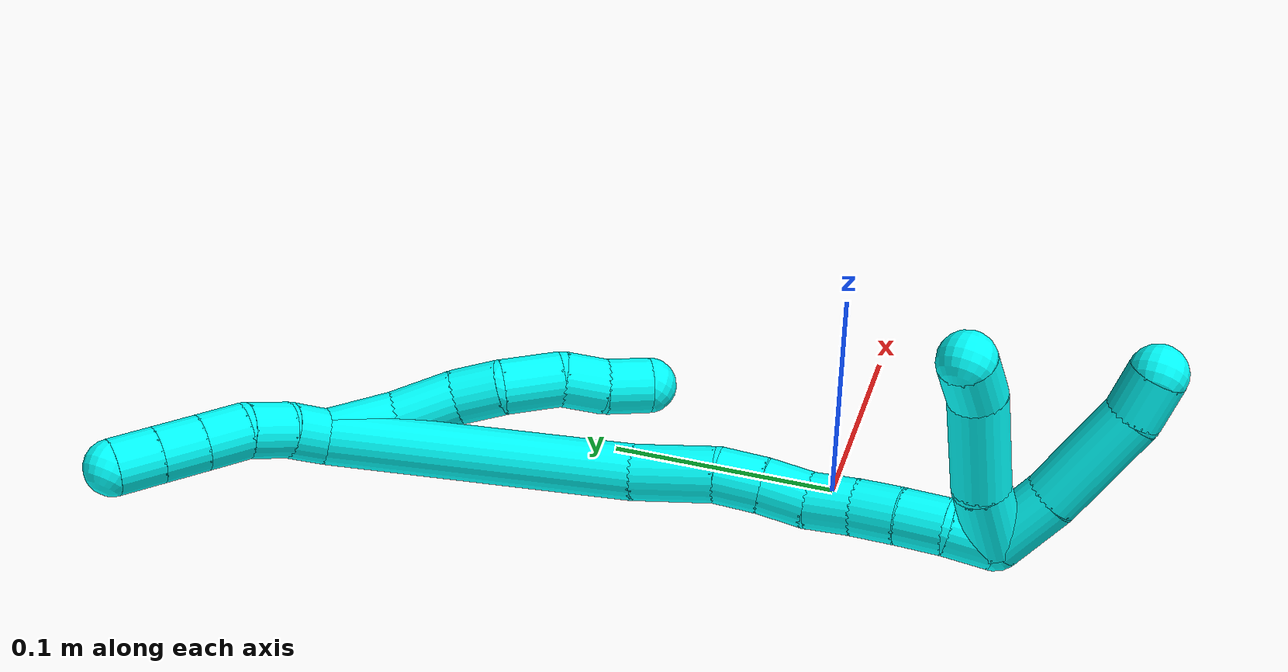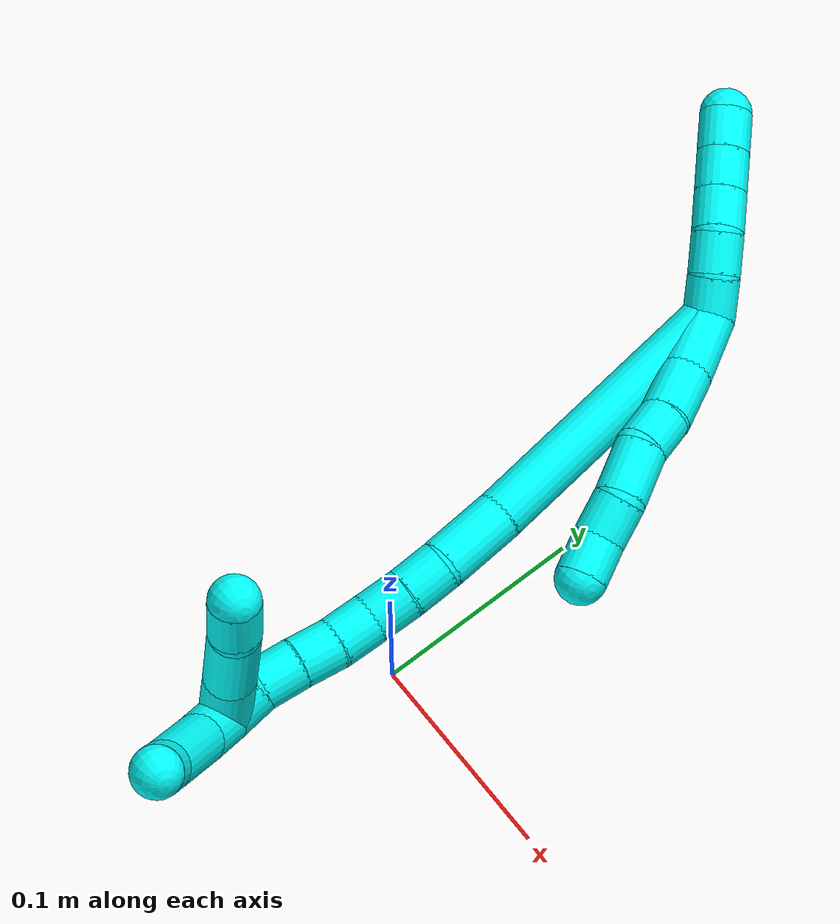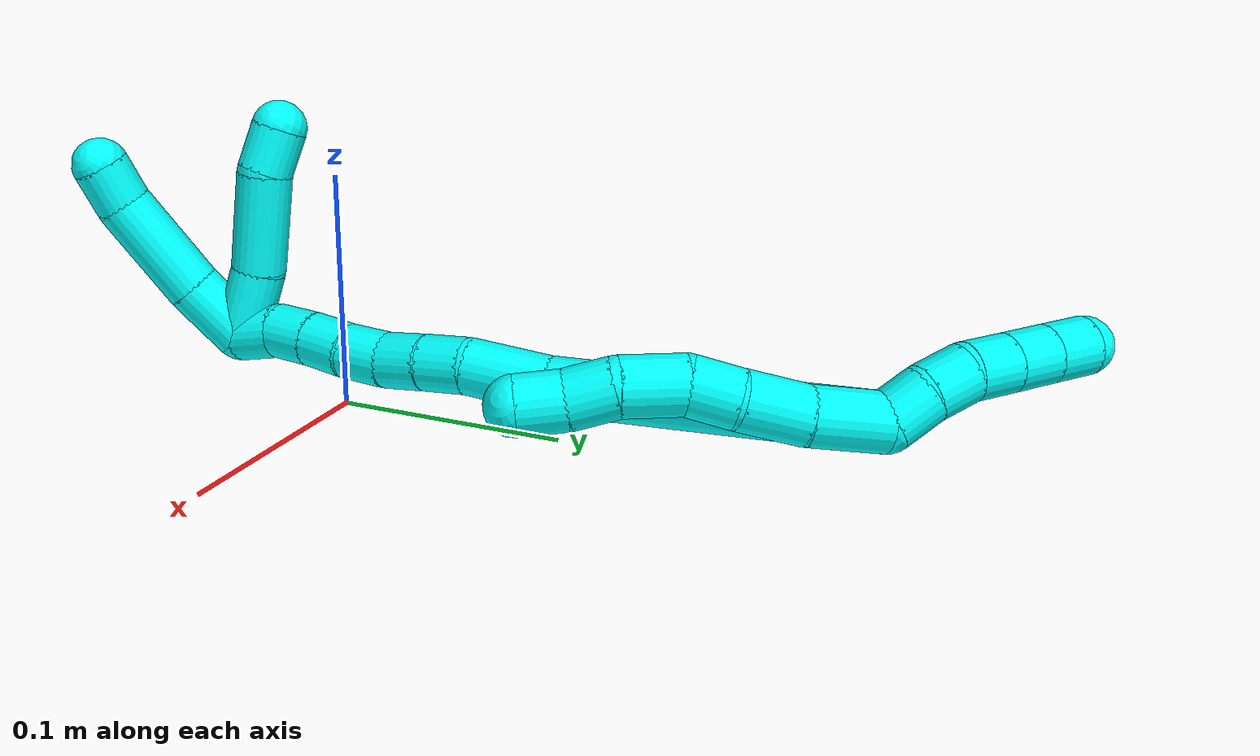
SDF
<sdf version="1.7">
 <world name="default">
  <model name="3">
   <static>0</static>
   <link name="3">
    <collision name="collision-cylinder-e_1_2_8">
     <pose>0.007345 -0.010879 0.009837 0.835688 0.464266 0.209148</pose>
     <geometry><cylinder><radius>0.0125</radius><length>0.032807</length></cylinder></geometry>
     <surface>
      <friction><ode><mu>1.16</mu><mu2>1.16</mu2><slip1>0</slip1><slip2>0</slip2></ode></friction>
      <contact><ode><kp>1e+06</kp><kd>1</kd><max_vel>0</max_vel><min_depth>0.001</min_depth></ode></contact>
     </surface>
    </collision>
    <visual name="visual-cylinder-e_1_2_8">
     <pose>0.007345 -0.010879 0.009837 0.835688 0.464266 0.209148</pose>
     <geometry><cylinder><radius>0.0125</radius><length>0.032807</length></cylinder></geometry>
     <material><ambient>0.003922 1 0.996078 1</ambient></material>
    </visual>
    <collision name="collision-cylinder-e_2_8_9">
     <pose>0.019166 -0.03165 0.028644 0.834187 0.32342 0.144316</pose>
     <geometry><cylinder><radius>0.0125</radius><length>0.028167</length></cylinder></geometry>
     <surface>
      <friction><ode><mu>1.16</mu><mu2>1.16</mu2><slip1>0</slip1><slip2>0</slip2></ode></friction>
      <contact><ode><kp>1e+06</kp><kd>1</kd><max_vel>0</max_vel><min_depth>0.001</min_depth></ode></contact>
     </surface>
    </collision>
    <visual name="visual-cylinder-e_2_8_9">
     <pose>0.019166 -0.03165 0.028644 0.834187 0.32342 0.144316</pose>
     <geometry><cylinder><radius>0.0125</radius><length>0.028167</length></cylinder></geometry>
     <material><ambient>0.003922 1 0.996078 1</ambient></material>
    </visual>
    <collision name="collision-cylinder-e_3_9_10">
     <pose>0.02657 -0.050114 0.04282 1.02506 0.284071 0.16058</pose>
     <geometry><cylinder><radius>0.0125</radius><length>0.020896</length></cylinder></geometry>
     <surface>
      <friction><ode><mu>1.16</mu><mu2>1.16</mu2><slip1>0</slip1><slip2>0</slip2></ode></friction>
      <contact><ode><kp>1e+06</kp><kd>1</kd><max_vel>0</max_vel><min_depth>0.001</min_depth></ode></contact>
     </surface>
    </collision>
    <visual name="visual-cylinder-e_3_9_10">
     <pose>0.02657 -0.050114 0.04282 1.02506 0.284071 0.16058</pose>
     <geometry><cylinder><radius>0.0125</radius><length>0.020896</length></cylinder></geometry>
     <material><ambient>0.003922 1 0.996078 1</ambient></material>
    </visual>
    <collision name="collision-cylinder-e_4_10_11">
     <pose>0.037071 -0.06755 0.055173 0.892206 0.586913 0.287053</pose>
     <geometry><cylinder><radius>0.0125</radius><length>0.027349</length></cylinder></geometry>
     <surface>
      <friction><ode><mu>1.16</mu><mu2>1.16</mu2><slip1>0</slip1><slip2>0</slip2></ode></friction>
      <contact><ode><kp>1e+06</kp><kd>1</kd><max_vel>0</max_vel><min_depth>0.001</min_depth></ode></contact>
     </surface>
    </collision>
    <visual name="visual-cylinder-e_4_10_11">
     <pose>0.037071 -0.06755 0.055173 0.892206 0.586913 0.287053</pose>
     <geometry><cylinder><radius>0.0125</radius><length>0.027349</length></cylinder></geometry>
     <material><ambient>0.003922 1 0.996078 1</ambient></material>
    </visual>
    <collision name="collision-cylinder-e_5_11_12">
     <pose>0.052051 -0.082958 0.064955 1.18792 0.809744 0.563412</pose>
     <geometry><cylinder><radius>0.0125</radius><length>0.020459</length></cylinder></geometry>
     <surface>
      <friction><ode><mu>1.16</mu><mu2>1.16</mu2><slip1>0</slip1><slip2>0</slip2></ode></friction>
      <contact><ode><kp>1e+06</kp><kd>1</kd><max_vel>0</max_vel><min_depth>0.001</min_depth></ode></contact>
     </surface>
    </collision>
    <visual name="visual-cylinder-e_5_11_12">
     <pose>0.052051 -0.082958 0.064955 1.18792 0.809744 0.563412</pose>
     <geometry><cylinder><radius>0.0125</radius><length>0.020459</length></cylinder></geometry>
     <material><ambient>0.003922 1 0.996078 1</ambient></material>
    </visual>
    <collision name="collision-cylinder-e_6_12_6">
     <pose>0.065743 -0.096125 0.072051 0.978153 0.666867 0.364581</pose>
     <geometry><cylinder><radius>0.0125</radius><length>0.020323</length></cylinder></geometry>
     <surface>
      <friction><ode><mu>1.16</mu><mu2>1.16</mu2><slip1>0</slip1><slip2>0</slip2></ode></friction>
      <contact><ode><kp>1e+06</kp><kd>1</kd><max_vel>0</max_vel><min_depth>0.001</min_depth></ode></contact>
     </surface>
    </collision>
    <visual name="visual-cylinder-e_6_12_6">
     <pose>0.065743 -0.096125 0.072051 0.978153 0.666867 0.364581</pose>
     <geometry><cylinder><radius>0.0125</radius><length>0.020323</length></cylinder></geometry>
     <material><ambient>0.003922 1 0.996078 1</ambient></material>
    </visual>
    <collision name="collision-cylinder-e_1_2_13">
     <pose>-0.009143 0.002691 -0.003027 -2.41487 -1.15379 2.08396</pose>
     <geometry><cylinder><radius>0.0125</radius><length>0.02</length></cylinder></geometry>
     <surface>
      <friction><ode><mu>1.16</mu><mu2>1.16</mu2><slip1>0</slip1><slip2>0</slip2></ode></friction>
      <contact><ode><kp>1e+06</kp><kd>1</kd><max_vel>0</max_vel><min_depth>0.001</min_depth></ode></contact>
     </surface>
    </collision>
    <visual name="visual-cylinder-e_1_2_13">
     <pose>-0.009143 0.002691 -0.003027 -2.41487 -1.15379 2.08396</pose>
     <geometry><cylinder><radius>0.0125</radius><length>0.02</length></cylinder></geometry>
     <material><ambient>0.003922 1 0.996078 1</ambient></material>
    </visual>
    <collision name="collision-cylinder-e_2_13_14">
     <pose>-0.026546 0.008587 -0.010691 -2.53674 -0.971977 2.0746</pose>
     <geometry><cylinder><radius>0.0125</radius><length>0.02</length></cylinder></geometry>
     <surface>
      <friction><ode><mu>1.16</mu><mu2>1.16</mu2><slip1>0</slip1><slip2>0</slip2></ode></friction>
      <contact><ode><kp>1e+06</kp><kd>1</kd><max_vel>0</max_vel><min_depth>0.001</min_depth></ode></contact>
     </surface>
    </collision>
    <visual name="visual-cylinder-e_2_13_14">
     <pose>-0.026546 0.008587 -0.010691 -2.53674 -0.971977 2.0746</pose>
     <geometry><cylinder><radius>0.0125</radius><length>0.02</length></cylinder></geometry>
     <material><ambient>0.003922 1 0.996078 1</ambient></material>
    </visual>
    <collision name="collision-cylinder-e_3_14_15">
     <pose>-0.041201 0.015745 -0.021921 -2.60166 -0.693837 1.83502</pose>
     <geometry><cylinder><radius>0.0125</radius><length>0.02</length></cylinder></geometry>
     <surface>
      <friction><ode><mu>1.16</mu><mu2>1.16</mu2><slip1>0</slip1><slip2>0</slip2></ode></friction>
      <contact><ode><kp>1e+06</kp><kd>1</kd><max_vel>0</max_vel><min_depth>0.001</min_depth></ode></contact>
     </surface>
    </collision>
    <visual name="visual-cylinder-e_3_14_15">
     <pose>-0.041201 0.015745 -0.021921 -2.60166 -0.693837 1.83502</pose>
     <geometry><cylinder><radius>0.0125</radius><length>0.02</length></cylinder></geometry>
     <material><ambient>0.003922 1 0.996078 1</ambient></material>
    </visual>
    <collision name="collision-cylinder-e_4_15_16">
     <pose>-0.054037 0.023615 -0.035086 -2.60383 -0.69985 1.84814</pose>
     <geometry><cylinder><radius>0.0125</radius><length>0.02</length></cylinder></geometry>
     <surface>
      <friction><ode><mu>1.16</mu><mu2>1.16</mu2><slip1>0</slip1><slip2>0</slip2></ode></friction>
      <contact><ode><kp>1e+06</kp><kd>1</kd><max_vel>0</max_vel><min_depth>0.001</min_depth></ode></contact>
     </surface>
    </collision>
    <visual name="visual-cylinder-e_4_15_16">
     <pose>-0.054037 0.023615 -0.035086 -2.60383 -0.69985 1.84814</pose>
     <geometry><cylinder><radius>0.0125</radius><length>0.02</length></cylinder></geometry>
     <material><ambient>0.003922 1 0.996078 1</ambient></material>
    </visual>
    <collision name="collision-cylinder-e_5_16_5">
     <pose>-0.066903 0.031474 -0.048228 -2.60144 -0.697693 1.84042</pose>
     <geometry><cylinder><radius>0.0125</radius><length>0.02</length></cylinder></geometry>
     <surface>
      <friction><ode><mu>1.16</mu><mu2>1.16</mu2><slip1>0</slip1><slip2>0</slip2></ode></friction>
      <contact><ode><kp>1e+06</kp><kd>1</kd><max_vel>0</max_vel><min_depth>0.001</min_depth></ode></contact>
     </surface>
    </collision>
    <visual name="visual-cylinder-e_5_16_5">
     <pose>-0.066903 0.031474 -0.048228 -2.60144 -0.697693 1.84042</pose>
     <geometry><cylinder><radius>0.0125</radius><length>0.02</length></cylinder></geometry>
     <material><ambient>0.003922 1 0.996078 1</ambient></material>
    </visual>
    <collision name="collision-cylinder-e_1_2_17">
     <pose>0.029626 -0.061307 0.015104 1.32924 0.438707 0.345873</pose>
     <geometry><cylinder><radius>0.0125</radius><length>0.13949</length></cylinder></geometry>
     <surface>
      <friction><ode><mu>1.16</mu><mu2>1.16</mu2><slip1>0</slip1><slip2>0</slip2></ode></friction>
      <contact><ode><kp>1e+06</kp><kd>1</kd><max_vel>0</max_vel><min_depth>0.001</min_depth></ode></contact>
     </surface>
    </collision>
    <visual name="visual-cylinder-e_1_2_17">
     <pose>0.029626 -0.061307 0.015104 1.32924 0.438707 0.345873</pose>
     <geometry><cylinder><radius>0.0125</radius><length>0.13949</length></cylinder></geometry>
     <material><ambient>0.003922 1 0.996078 1</ambient></material>
    </visual>
    <collision name="collision-cylinder-e_2_17_18">
     <pose>0.065256 -0.139528 0.035214 1.2831 0.328103 0.246053</pose>
     <geometry><cylinder><radius>0.0125</radius><length>0.037267</length></cylinder></geometry>
     <surface>
      <friction><ode><mu>1.16</mu><mu2>1.16</mu2><slip1>0</slip1><slip2>0</slip2></ode></friction>
      <contact><ode><kp>1e+06</kp><kd>1</kd><max_vel>0</max_vel><min_depth>0.001</min_depth></ode></contact>
     </surface>
    </collision>
    <visual name="visual-cylinder-e_2_17_18">
     <pose>0.065256 -0.139528 0.035214 1.2831 0.328103 0.246053</pose>
     <geometry><cylinder><radius>0.0125</radius><length>0.037267</length></cylinder></geometry>
     <material><ambient>0.003922 1 0.996078 1</ambient></material>
    </visual>
    <collision name="collision-cylinder-e_3_18_19">
     <pose>0.075712 -0.16576 0.041218 1.46391 0.443532 0.399743</pose>
     <geometry><cylinder><radius>0.0125</radius><length>0.020749</length></cylinder></geometry>
     <surface>
      <friction><ode><mu>1.16</mu><mu2>1.16</mu2><slip1>0</slip1><slip2>0</slip2></ode></friction>
      <contact><ode><kp>1e+06</kp><kd>1</kd><max_vel>0</max_vel><min_depth>0.001</min_depth></ode></contact>
     </surface>
    </collision>
    <visual name="visual-cylinder-e_3_18_19">
     <pose>0.075712 -0.16576 0.041218 1.46391 0.443532 0.399743</pose>
     <geometry><cylinder><radius>0.0125</radius><length>0.020749</length></cylinder></geometry>
     <material><ambient>0.003922 1 0.996078 1</ambient></material>
    </visual>
    <collision name="collision-cylinder-e_4_19_20">
     <pose>0.084543 -0.184306 0.042359 1.55553 0.442956 0.436458</pose>
     <geometry><cylinder><radius>0.0125</radius><length>0.020433</length></cylinder></geometry>
     <surface>
      <friction><ode><mu>1.16</mu><mu2>1.16</mu2><slip1>0</slip1><slip2>0</slip2></ode></friction>
      <contact><ode><kp>1e+06</kp><kd>1</kd><max_vel>0</max_vel><min_depth>0.001</min_depth></ode></contact>
     </surface>
    </collision>
    <visual name="visual-cylinder-e_4_19_20">
     <pose>0.084543 -0.184306 0.042359 1.55553 0.442956 0.436458</pose>
     <geometry><cylinder><radius>0.0125</radius><length>0.020433</length></cylinder></geometry>
     <material><ambient>0.003922 1 0.996078 1</ambient></material>
    </visual>
    <collision name="collision-cylinder-e_5_20_21">
     <pose>0.092129 -0.203124 0.043978 1.41782 0.319299 0.274456</pose>
     <geometry><cylinder><radius>0.0125</radius><length>0.020438</length></cylinder></geometry>
     <surface>
      <friction><ode><mu>1.16</mu><mu2>1.16</mu2><slip1>0</slip1><slip2>0</slip2></ode></friction>
      <contact><ode><kp>1e+06</kp><kd>1</kd><max_vel>0</max_vel><min_depth>0.001</min_depth></ode></contact>
     </surface>
    </collision>
    <visual name="visual-cylinder-e_5_20_21">
     <pose>0.092129 -0.203124 0.043978 1.41782 0.319299 0.274456</pose>
     <geometry><cylinder><radius>0.0125</radius><length>0.020438</length></cylinder></geometry>
     <material><ambient>0.003922 1 0.996078 1</ambient></material>
    </visual>
    <collision name="collision-cylinder-e_6_21_22">
     <pose>0.097669 -0.222504 0.046106 1.50461 0.233338 0.218507</pose>
     <geometry><cylinder><radius>0.0125</radius><length>0.020171</length></cylinder></geometry>
     <surface>
      <friction><ode><mu>1.16</mu><mu2>1.16</mu2><slip1>0</slip1><slip2>0</slip2></ode></friction>
      <contact><ode><kp>1e+06</kp><kd>1</kd><max_vel>0</max_vel><min_depth>0.001</min_depth></ode></contact>
     </surface>
    </collision>
    <visual name="visual-cylinder-e_6_21_22">
     <pose>0.097669 -0.222504 0.046106 1.50461 0.233338 0.218507</pose>
     <geometry><cylinder><radius>0.0125</radius><length>0.020171</length></cylinder></geometry>
     <material><ambient>0.003922 1 0.996078 1</ambient></material>
    </visual>
    <collision name="collision-cylinder-e_7_22_23">
     <pose>0.10304 -0.24222 0.047372 1.50871 0.296616 0.278986</pose>
     <geometry><cylinder><radius>0.0125</radius><length>0.020795</length></cylinder></geometry>
     <surface>
      <friction><ode><mu>1.16</mu><mu2>1.16</mu2><slip1>0</slip1><slip2>0</slip2></ode></friction>
      <contact><ode><kp>1e+06</kp><kd>1</kd><max_vel>0</max_vel><min_depth>0.001</min_depth></ode></contact>
     </surface>
    </collision>
    <visual name="visual-cylinder-e_7_22_23">
     <pose>0.10304 -0.24222 0.047372 1.50871 0.296616 0.278986</pose>
     <geometry><cylinder><radius>0.0125</radius><length>0.020795</length></cylinder></geometry>
     <material><ambient>0.003922 1 0.996078 1</ambient></material>
    </visual>
    <collision name="collision-cylinder-e_8_23_1">
     <pose>0.111674 -0.260794 0.048734 1.4848 0.572373 0.5274</pose>
     <geometry><cylinder><radius>0.0125</radius><length>0.020658</length></cylinder></geometry>
     <surface>
      <friction><ode><mu>1.16</mu><mu2>1.16</mu2><slip1>0</slip1><slip2>0</slip2></ode></friction>
      <contact><ode><kp>1e+06</kp><kd>1</kd><max_vel>0</max_vel><min_depth>0.001</min_depth></ode></contact>
     </surface>
    </collision>
    <visual name="visual-cylinder-e_8_23_1">
     <pose>0.111674 -0.260794 0.048734 1.4848 0.572373 0.5274</pose>
     <geometry><cylinder><radius>0.0125</radius><length>0.020658</length></cylinder></geometry>
     <material><ambient>0.003922 1 0.996078 1</ambient></material>
    </visual>
    <collision name="collision-cylinder-e_1_1_24">
     <pose>0.113838 -0.280111 0.059957 0.794381 -0.225535 -0.09494</pose>
     <geometry><cylinder><radius>0.0125</radius><length>0.030678</length></cylinder></geometry>
     <surface>
      <friction><ode><mu>1.16</mu><mu2>1.16</mu2><slip1>0</slip1><slip2>0</slip2></ode></friction>
      <contact><ode><kp>1e+06</kp><kd>1</kd><max_vel>0</max_vel><min_depth>0.001</min_depth></ode></contact>
     </surface>
    </collision>
    <visual name="visual-cylinder-e_1_1_24">
     <pose>0.113838 -0.280111 0.059957 0.794381 -0.225535 -0.09494</pose>
     <geometry><cylinder><radius>0.0125</radius><length>0.030678</length></cylinder></geometry>
     <material><ambient>0.003922 1 0.996078 1</ambient></material>
    </visual>
    <collision name="collision-cylinder-e_2_24_25">
     <pose>0.102425 -0.30597 0.087776 0.71939 -0.333304 -0.126346</pose>
     <geometry><cylinder><radius>0.0125</radius><length>0.048797</length></cylinder></geometry>
     <surface>
      <friction><ode><mu>1.16</mu><mu2>1.16</mu2><slip1>0</slip1><slip2>0</slip2></ode></friction>
      <contact><ode><kp>1e+06</kp><kd>1</kd><max_vel>0</max_vel><min_depth>0.001</min_depth></ode></contact>
     </surface>
    </collision>
    <visual name="visual-cylinder-e_2_24_25">
     <pose>0.102425 -0.30597 0.087776 0.71939 -0.333304 -0.126346</pose>
     <geometry><cylinder><radius>0.0125</radius><length>0.048797</length></cylinder></geometry>
     <material><ambient>0.003922 1 0.996078 1</ambient></material>
    </visual>
    <collision name="collision-cylinder-e_3_25_4">
     <pose>0.089512 -0.325805 0.112828 0.542062 -0.501229 -0.142028</pose>
     <geometry><cylinder><radius>0.0125</radius><length>0.020525</length></cylinder></geometry>
     <surface>
      <friction><ode><mu>1.16</mu><mu2>1.16</mu2><slip1>0</slip1><slip2>0</slip2></ode></friction>
      <contact><ode><kp>1e+06</kp><kd>1</kd><max_vel>0</max_vel><min_depth>0.001</min_depth></ode></contact>
     </surface>
    </collision>
    <visual name="visual-cylinder-e_3_25_4">
     <pose>0.089512 -0.325805 0.112828 0.542062 -0.501229 -0.142028</pose>
     <geometry><cylinder><radius>0.0125</radius><length>0.020525</length></cylinder></geometry>
     <material><ambient>0.003922 1 0.996078 1</ambient></material>
    </visual>
    <collision name="collision-cylinder-e_1_1_26">
     <pose>0.102232 -0.270212 0.055465 0.127476 -1.1892 -0.086267</pose>
     <geometry><cylinder><radius>0.0125</radius><length>0.032404</length></cylinder></geometry>
     <surface>
      <friction><ode><mu>1.16</mu><mu2>1.16</mu2><slip1>0</slip1><slip2>0</slip2></ode></friction>
      <contact><ode><kp>1e+06</kp><kd>1</kd><max_vel>0</max_vel><min_depth>0.001</min_depth></ode></contact>
     </surface>
    </collision>
    <visual name="visual-cylinder-e_1_1_26">
     <pose>0.102232 -0.270212 0.055465 0.127476 -1.1892 -0.086267</pose>
     <geometry><cylinder><radius>0.0125</radius><length>0.032404</length></cylinder></geometry>
     <material><ambient>0.003922 1 0.996078 1</ambient></material>
    </visual>
    <collision name="collision-cylinder-e_2_26_27">
     <pose>0.067446 -0.274189 0.07321 0.266486 -1.0178 -0.149285</pose>
     <geometry><cylinder><radius>0.0125</radius><length>0.046417</length></cylinder></geometry>
     <surface>
      <friction><ode><mu>1.16</mu><mu2>1.16</mu2><slip1>0</slip1><slip2>0</slip2></ode></friction>
      <contact><ode><kp>1e+06</kp><kd>1</kd><max_vel>0</max_vel><min_depth>0.001</min_depth></ode></contact>
     </surface>
    </collision>
    <visual name="visual-cylinder-e_2_26_27">
     <pose>0.067446 -0.274189 0.07321 0.266486 -1.0178 -0.149285</pose>
     <geometry><cylinder><radius>0.0125</radius><length>0.046417</length></cylinder></geometry>
     <material><ambient>0.003922 1 0.996078 1</ambient></material>
    </visual>
    <collision name="collision-cylinder-e_3_27_3">
     <pose>0.037515 -0.278325 0.087731 0.32341 -1.29218 -0.244787</pose>
     <geometry><cylinder><radius>0.0125</radius><length>0.021179</length></cylinder></geometry>
     <surface>
      <friction><ode><mu>1.16</mu><mu2>1.16</mu2><slip1>0</slip1><slip2>0</slip2></ode></friction>
      <contact><ode><kp>1e+06</kp><kd>1</kd><max_vel>0</max_vel><min_depth>0.001</min_depth></ode></contact>
     </surface>
    </collision>
    <visual name="visual-cylinder-e_3_27_3">
     <pose>0.037515 -0.278325 0.087731 0.32341 -1.29218 -0.244787</pose>
     <geometry><cylinder><radius>0.0125</radius><length>0.021179</length></cylinder></geometry>
     <material><ambient>0.003922 1 0.996078 1</ambient></material>
    </visual>
    <collision name="collision-sphere-3">
     <pose>0.027334 -0.279251 0.090492 0 -0 0</pose>
     <geometry><sphere><radius>0.0125</radius></sphere></geometry>
     <surface>
      <friction><ode><mu>1.16</mu><mu2>1.16</mu2><slip1>0</slip1><slip2>0</slip2></ode></friction>
      <contact><ode><kp>1e+06</kp><kd>1</kd><max_vel>0</max_vel><min_depth>0.001</min_depth></ode></contact>
     </surface>
    </collision>
    <visual name="visual-sphere-3">
     <pose>0.027334 -0.279251 0.090492 0 -0 0</pose>
     <geometry><sphere><radius>0.0125</radius></sphere></geometry>
     <material><ambient>0.003922 1 0.996078 1</ambient></material>
    </visual>
    <collision name="collision-sphere-27">
     <pose>0.047696 -0.2774 0.084969 0 -0 0</pose>
     <geometry><sphere><radius>0.0125</radius></sphere></geometry>
     <surface>
      <friction><ode><mu>1.16</mu><mu2>1.16</mu2><slip1>0</slip1><slip2>0</slip2></ode></friction>
      <contact><ode><kp>1e+06</kp><kd>1</kd><max_vel>0</max_vel><min_depth>0.001</min_depth></ode></contact>
     </surface>
    </collision>
    <visual name="visual-sphere-27">
     <pose>0.047696 -0.2774 0.084969 0 -0 0</pose>
     <geometry><sphere><radius>0.0125</radius></sphere></geometry>
     <material><ambient>0.003922 1 0.996078 1</ambient></material>
    </visual>
    <collision name="collision-sphere-26">
     <pose>0.087195 -0.270979 0.06145 0 -0 0</pose>
     <geometry><sphere><radius>0.0125</radius></sphere></geometry>
     <surface>
      <friction><ode><mu>1.16</mu><mu2>1.16</mu2><slip1>0</slip1><slip2>0</slip2></ode></friction>
      <contact><ode><kp>1e+06</kp><kd>1</kd><max_vel>0</max_vel><min_depth>0.001</min_depth></ode></contact>
     </surface>
    </collision>
    <visual name="visual-sphere-26">
     <pose>0.087195 -0.270979 0.06145 0 -0 0</pose>
     <geometry><sphere><radius>0.0125</radius></sphere></geometry>
     <material><ambient>0.003922 1 0.996078 1</ambient></material>
    </visual>
    <collision name="collision-sphere-4">
     <pose>0.084581 -0.330448 0.120538 0 -0 0</pose>
     <geometry><sphere><radius>0.0125</radius></sphere></geometry>
     <surface>
      <friction><ode><mu>1.16</mu><mu2>1.16</mu2><slip1>0</slip1><slip2>0</slip2></ode></friction>
      <contact><ode><kp>1e+06</kp><kd>1</kd><max_vel>0</max_vel><min_depth>0.001</min_depth></ode></contact>
     </surface>
    </collision>
    <visual name="visual-sphere-4">
     <pose>0.084581 -0.330448 0.120538 0 -0 0</pose>
     <geometry><sphere><radius>0.0125</radius></sphere></geometry>
     <material><ambient>0.003922 1 0.996078 1</ambient></material>
    </visual>
    <collision name="collision-sphere-25">
     <pose>0.094443 -0.321162 0.105118 0 -0 0</pose>
     <geometry><sphere><radius>0.0125</radius></sphere></geometry>
     <surface>
      <friction><ode><mu>1.16</mu><mu2>1.16</mu2><slip1>0</slip1><slip2>0</slip2></ode></friction>
      <contact><ode><kp>1e+06</kp><kd>1</kd><max_vel>0</max_vel><min_depth>0.001</min_depth></ode></contact>
     </surface>
    </collision>
    <visual name="visual-sphere-25">
     <pose>0.094443 -0.321162 0.105118 0 -0 0</pose>
     <geometry><sphere><radius>0.0125</radius></sphere></geometry>
     <material><ambient>0.003922 1 0.996078 1</ambient></material>
    </visual>
    <collision name="collision-sphere-24">
     <pose>0.110408 -0.290778 0.070433 0 -0 0</pose>
     <geometry><sphere><radius>0.0125</radius></sphere></geometry>
     <surface>
      <friction><ode><mu>1.16</mu><mu2>1.16</mu2><slip1>0</slip1><slip2>0</slip2></ode></friction>
      <contact><ode><kp>1e+06</kp><kd>1</kd><max_vel>0</max_vel><min_depth>0.001</min_depth></ode></contact>
     </surface>
    </collision>
    <visual name="visual-sphere-24">
     <pose>0.110408 -0.290778 0.070433 0 -0 0</pose>
     <geometry><sphere><radius>0.0125</radius></sphere></geometry>
     <material><ambient>0.003922 1 0.996078 1</ambient></material>
    </visual>
    <collision name="collision-sphere-1">
     <pose>0.117268 -0.269445 0.04948 0 -0 0</pose>
     <geometry><sphere><radius>0.0125</radius></sphere></geometry>
     <surface>
      <friction><ode><mu>1.16</mu><mu2>1.16</mu2><slip1>0</slip1><slip2>0</slip2></ode></friction>
      <contact><ode><kp>1e+06</kp><kd>1</kd><max_vel>0</max_vel><min_depth>0.001</min_depth></ode></contact>
     </surface>
    </collision>
    <visual name="visual-sphere-1">
     <pose>0.117268 -0.269445 0.04948 0 -0 0</pose>
     <geometry><sphere><radius>0.0125</radius></sphere></geometry>
     <material><ambient>0.003922 1 0.996078 1</ambient></material>
    </visual>
    <collision name="collision-sphere-23">
     <pose>0.106079 -0.252144 0.047989 0 -0 0</pose>
     <geometry><sphere><radius>0.0125</radius></sphere></geometry>
     <surface>
      <friction><ode><mu>1.16</mu><mu2>1.16</mu2><slip1>0</slip1><slip2>0</slip2></ode></friction>
      <contact><ode><kp>1e+06</kp><kd>1</kd><max_vel>0</max_vel><min_depth>0.001</min_depth></ode></contact>
     </surface>
    </collision>
    <visual name="visual-sphere-23">
     <pose>0.106079 -0.252144 0.047989 0 -0 0</pose>
     <geometry><sphere><radius>0.0125</radius></sphere></geometry>
     <material><ambient>0.003922 1 0.996078 1</ambient></material>
    </visual>
    <collision name="collision-sphere-22">
     <pose>0.100001 -0.232295 0.046755 0 -0 0</pose>
     <geometry><sphere><radius>0.0125</radius></sphere></geometry>
     <surface>
      <friction><ode><mu>1.16</mu><mu2>1.16</mu2><slip1>0</slip1><slip2>0</slip2></ode></friction>
      <contact><ode><kp>1e+06</kp><kd>1</kd><max_vel>0</max_vel><min_depth>0.001</min_depth></ode></contact>
     </surface>
    </collision>
    <visual name="visual-sphere-22">
     <pose>0.100001 -0.232295 0.046755 0 -0 0</pose>
     <geometry><sphere><radius>0.0125</radius></sphere></geometry>
     <material><ambient>0.003922 1 0.996078 1</ambient></material>
    </visual>
    <collision name="collision-sphere-21">
     <pose>0.095337 -0.212714 0.045457 0 -0 0</pose>
     <geometry><sphere><radius>0.0125</radius></sphere></geometry>
     <surface>
      <friction><ode><mu>1.16</mu><mu2>1.16</mu2><slip1>0</slip1><slip2>0</slip2></ode></friction>
      <contact><ode><kp>1e+06</kp><kd>1</kd><max_vel>0</max_vel><min_depth>0.001</min_depth></ode></contact>
     </surface>
    </collision>
    <visual name="visual-sphere-21">
     <pose>0.095337 -0.212714 0.045457 0 -0 0</pose>
     <geometry><sphere><radius>0.0125</radius></sphere></geometry>
     <material><ambient>0.003922 1 0.996078 1</ambient></material>
    </visual>
    <collision name="collision-sphere-12">
     <pose>0.059458 -0.089502 0.067591 0 -0 0</pose>
     <geometry><sphere><radius>0.0125</radius></sphere></geometry>
     <surface>
      <friction><ode><mu>1.16</mu><mu2>1.16</mu2><slip1>0</slip1><slip2>0</slip2></ode></friction>
      <contact><ode><kp>1e+06</kp><kd>1</kd><max_vel>0</max_vel><min_depth>0.001</min_depth></ode></contact>
     </surface>
    </collision>
    <visual name="visual-sphere-12">
     <pose>0.059458 -0.089502 0.067591 0 -0 0</pose>
     <geometry><sphere><radius>0.0125</radius></sphere></geometry>
     <material><ambient>0.003922 1 0.996078 1</ambient></material>
    </visual>
    <collision name="collision-sphere-11">
     <pose>0.044644 -0.076414 0.06232 0 -0 0</pose>
     <geometry><sphere><radius>0.0125</radius></sphere></geometry>
     <surface>
      <friction><ode><mu>1.16</mu><mu2>1.16</mu2><slip1>0</slip1><slip2>0</slip2></ode></friction>
      <contact><ode><kp>1e+06</kp><kd>1</kd><max_vel>0</max_vel><min_depth>0.001</min_depth></ode></contact>
     </surface>
    </collision>
    <visual name="visual-sphere-11">
     <pose>0.044644 -0.076414 0.06232 0 -0 0</pose>
     <geometry><sphere><radius>0.0125</radius></sphere></geometry>
     <material><ambient>0.003922 1 0.996078 1</ambient></material>
    </visual>
    <collision name="collision-sphere-10">
     <pose>0.029498 -0.058687 0.048026 0 -0 0</pose>
     <geometry><sphere><radius>0.0125</radius></sphere></geometry>
     <surface>
      <friction><ode><mu>1.16</mu><mu2>1.16</mu2><slip1>0</slip1><slip2>0</slip2></ode></friction>
      <contact><ode><kp>1e+06</kp><kd>1</kd><max_vel>0</max_vel><min_depth>0.001</min_depth></ode></contact>
     </surface>
    </collision>
    <visual name="visual-sphere-10">
     <pose>0.029498 -0.058687 0.048026 0 -0 0</pose>
     <geometry><sphere><radius>0.0125</radius></sphere></geometry>
     <material><ambient>0.003922 1 0.996078 1</ambient></material>
    </visual>
    <collision name="collision-sphere-9">
     <pose>0.023642 -0.041542 0.037614 0 -0 0</pose>
     <geometry><sphere><radius>0.0125</radius></sphere></geometry>
     <surface>
      <friction><ode><mu>1.16</mu><mu2>1.16</mu2><slip1>0</slip1><slip2>0</slip2></ode></friction>
      <contact><ode><kp>1e+06</kp><kd>1</kd><max_vel>0</max_vel><min_depth>0.001</min_depth></ode></contact>
     </surface>
    </collision>
    <visual name="visual-sphere-9">
     <pose>0.023642 -0.041542 0.037614 0 -0 0</pose>
     <geometry><sphere><radius>0.0125</radius></sphere></geometry>
     <material><ambient>0.003922 1 0.996078 1</ambient></material>
    </visual>
    <collision name="collision-sphere-2">
     <geometry><sphere><radius>0.0125</radius></sphere></geometry>
     <surface>
      <friction><ode><mu>1.16</mu><mu2>1.16</mu2><slip1>0</slip1><slip2>0</slip2></ode></friction>
      <contact><ode><kp>1e+06</kp><kd>1</kd><max_vel>0</max_vel><min_depth>0.001</min_depth></ode></contact>
     </surface>
    </collision>
    <visual name="visual-sphere-2">
     <geometry><sphere><radius>0.0125</radius></sphere></geometry>
     <material><ambient>0.003922 1 0.996078 1</ambient></material>
    </visual>
    <collision name="collision-sphere-19">
     <pose>0.080164 -0.175077 0.042218 0 -0 0</pose>
     <geometry><sphere><radius>0.0125</radius></sphere></geometry>
     <surface>
      <friction><ode><mu>1.16</mu><mu2>1.16</mu2><slip1>0</slip1><slip2>0</slip2></ode></friction>
      <contact><ode><kp>1e+06</kp><kd>1</kd><max_vel>0</max_vel><min_depth>0.001</min_depth></ode></contact>
     </surface>
    </collision>
    <visual name="visual-sphere-19">
     <pose>0.080164 -0.175077 0.042218 0 -0 0</pose>
     <geometry><sphere><radius>0.0125</radius></sphere></geometry>
     <material><ambient>0.003922 1 0.996078 1</ambient></material>
    </visual>
    <collision name="collision-sphere-8">
     <pose>0.01469 -0.021759 0.019674 0 -0 0</pose>
     <geometry><sphere><radius>0.0125</radius></sphere></geometry>
     <surface>
      <friction><ode><mu>1.16</mu><mu2>1.16</mu2><slip1>0</slip1><slip2>0</slip2></ode></friction>
      <contact><ode><kp>1e+06</kp><kd>1</kd><max_vel>0</max_vel><min_depth>0.001</min_depth></ode></contact>
     </surface>
    </collision>
    <visual name="visual-sphere-8">
     <pose>0.01469 -0.021759 0.019674 0 -0 0</pose>
     <geometry><sphere><radius>0.0125</radius></sphere></geometry>
     <material><ambient>0.003922 1 0.996078 1</ambient></material>
    </visual>
    <collision name="collision-sphere-6">
     <pose>0.072028 -0.102748 0.076511 0 -0 0</pose>
     <geometry><sphere><radius>0.0125</radius></sphere></geometry>
     <surface>
      <friction><ode><mu>1.16</mu><mu2>1.16</mu2><slip1>0</slip1><slip2>0</slip2></ode></friction>
      <contact><ode><kp>1e+06</kp><kd>1</kd><max_vel>0</max_vel><min_depth>0.001</min_depth></ode></contact>
     </surface>
    </collision>
    <visual name="visual-sphere-6">
     <pose>0.072028 -0.102748 0.076511 0 -0 0</pose>
     <geometry><sphere><radius>0.0125</radius></sphere></geometry>
     <material><ambient>0.003922 1 0.996078 1</ambient></material>
    </visual>
    <collision name="collision-sphere-13">
     <pose>-0.018286 0.005382 -0.006054 0 -0 0</pose>
     <geometry><sphere><radius>0.0125</radius></sphere></geometry>
     <surface>
      <friction><ode><mu>1.16</mu><mu2>1.16</mu2><slip1>0</slip1><slip2>0</slip2></ode></friction>
      <contact><ode><kp>1e+06</kp><kd>1</kd><max_vel>0</max_vel><min_depth>0.001</min_depth></ode></contact>
     </surface>
    </collision>
    <visual name="visual-sphere-13">
     <pose>-0.018286 0.005382 -0.006054 0 -0 0</pose>
     <geometry><sphere><radius>0.0125</radius></sphere></geometry>
     <material><ambient>0.003922 1 0.996078 1</ambient></material>
    </visual>
    <collision name="collision-sphere-14">
     <pose>-0.034806 0.011793 -0.015327 0 -0 0</pose>
     <geometry><sphere><radius>0.0125</radius></sphere></geometry>
     <surface>
      <friction><ode><mu>1.16</mu><mu2>1.16</mu2><slip1>0</slip1><slip2>0</slip2></ode></friction>
      <contact><ode><kp>1e+06</kp><kd>1</kd><max_vel>0</max_vel><min_depth>0.001</min_depth></ode></contact>
     </surface>
    </collision>
    <visual name="visual-sphere-14">
     <pose>-0.034806 0.011793 -0.015327 0 -0 0</pose>
     <geometry><sphere><radius>0.0125</radius></sphere></geometry>
     <material><ambient>0.003922 1 0.996078 1</ambient></material>
    </visual>
    <collision name="collision-sphere-15">
     <pose>-0.047596 0.019697 -0.028516 0 -0 0</pose>
     <geometry><sphere><radius>0.0125</radius></sphere></geometry>
     <surface>
      <friction><ode><mu>1.16</mu><mu2>1.16</mu2><slip1>0</slip1><slip2>0</slip2></ode></friction>
      <contact><ode><kp>1e+06</kp><kd>1</kd><max_vel>0</max_vel><min_depth>0.001</min_depth></ode></contact>
     </surface>
    </collision>
    <visual name="visual-sphere-15">
     <pose>-0.047596 0.019697 -0.028516 0 -0 0</pose>
     <geometry><sphere><radius>0.0125</radius></sphere></geometry>
     <material><ambient>0.003922 1 0.996078 1</ambient></material>
    </visual>
    <collision name="collision-sphere-16">
     <pose>-0.060478 0.027533 -0.041655 0 -0 0</pose>
     <geometry><sphere><radius>0.0125</radius></sphere></geometry>
     <surface>
      <friction><ode><mu>1.16</mu><mu2>1.16</mu2><slip1>0</slip1><slip2>0</slip2></ode></friction>
      <contact><ode><kp>1e+06</kp><kd>1</kd><max_vel>0</max_vel><min_depth>0.001</min_depth></ode></contact>
     </surface>
    </collision>
    <visual name="visual-sphere-16">
     <pose>-0.060478 0.027533 -0.041655 0 -0 0</pose>
     <geometry><sphere><radius>0.0125</radius></sphere></geometry>
     <material><ambient>0.003922 1 0.996078 1</ambient></material>
    </visual>
    <collision name="collision-sphere-5">
     <pose>-0.073327 0.035415 -0.0548 0 -0 0</pose>
     <geometry><sphere><radius>0.0125</radius></sphere></geometry>
     <surface>
      <friction><ode><mu>1.16</mu><mu2>1.16</mu2><slip1>0</slip1><slip2>0</slip2></ode></friction>
      <contact><ode><kp>1e+06</kp><kd>1</kd><max_vel>0</max_vel><min_depth>0.001</min_depth></ode></contact>
     </surface>
    </collision>
    <visual name="visual-sphere-5">
     <pose>-0.073327 0.035415 -0.0548 0 -0 0</pose>
     <geometry><sphere><radius>0.0125</radius></sphere></geometry>
     <material><ambient>0.003922 1 0.996078 1</ambient></material>
    </visual>
    <collision name="collision-sphere-17">
     <pose>0.059251 -0.122614 0.030209 0 -0 0</pose>
     <geometry><sphere><radius>0.0125</radius></sphere></geometry>
     <surface>
      <friction><ode><mu>1.16</mu><mu2>1.16</mu2><slip1>0</slip1><slip2>0</slip2></ode></friction>
      <contact><ode><kp>1e+06</kp><kd>1</kd><max_vel>0</max_vel><min_depth>0.001</min_depth></ode></contact>
     </surface>
    </collision>
    <visual name="visual-sphere-17">
     <pose>0.059251 -0.122614 0.030209 0 -0 0</pose>
     <geometry><sphere><radius>0.0125</radius></sphere></geometry>
     <material><ambient>0.003922 1 0.996078 1</ambient></material>
    </visual>
    <collision name="collision-sphere-18">
     <pose>0.07126 -0.156443 0.040219 0 -0 0</pose>
     <geometry><sphere><radius>0.0125</radius></sphere></geometry>
     <surface>
      <friction><ode><mu>1.16</mu><mu2>1.16</mu2><slip1>0</slip1><slip2>0</slip2></ode></friction>
      <contact><ode><kp>1e+06</kp><kd>1</kd><max_vel>0</max_vel><min_depth>0.001</min_depth></ode></contact>
     </surface>
    </collision>
    <visual name="visual-sphere-18">
     <pose>0.07126 -0.156443 0.040219 0 -0 0</pose>
     <geometry><sphere><radius>0.0125</radius></sphere></geometry>
     <material><ambient>0.003922 1 0.996078 1</ambient></material>
    </visual>
    <collision name="collision-sphere-20">
     <pose>0.088922 -0.193535 0.0425 0 -0 0</pose>
     <geometry><sphere><radius>0.0125</radius></sphere></geometry>
     <surface>
      <friction><ode><mu>1.16</mu><mu2>1.16</mu2><slip1>0</slip1><slip2>0</slip2></ode></friction>
      <contact><ode><kp>1e+06</kp><kd>1</kd><max_vel>0</max_vel><min_depth>0.001</min_depth></ode></contact>
     </surface>
    </collision>
    <visual name="visual-sphere-20">
     <pose>0.088922 -0.193535 0.0425 0 -0 0</pose>
     <geometry><sphere><radius>0.0125</radius></sphere></geometry>
     <material><ambient>0.003922 1 0.996078 1</ambient></material>
    </visual>
    <inertial>
     <pose>0.0487 -0.138348 0.037866 0 -0 0</pose>
     <mass>0.75</mass>
     <inertia>
      <ixx>0.000323</ixx>
      <ixy>0</ixy>
      <ixz>0</ixz>
      <iyy>0.00018</iyy>
      <iyz>0</iyz>
      <izz>0.000165</izz>
     </inertia>
    </inertial>
   </link>
   <pose>-0.044395 0.222192 0.011496 -0.422712 0.91998 -0.656937</pose>
  </model>
 </world>
</sdf>
